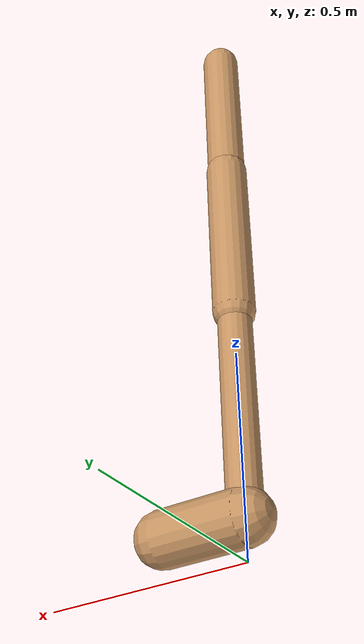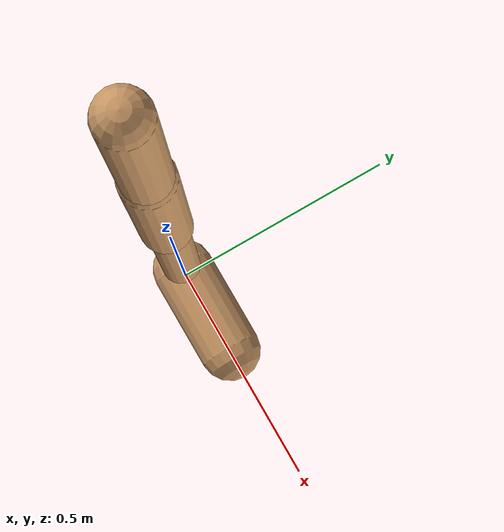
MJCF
<mujoco model="walker2d">
  <compiler angle="degree" coordinate="global" inertiafromgeom="true" />
  <default>
    <joint armature="0.01" damping=".1" limited="true" />
    <geom conaffinity="0" condim="3" contype="1" density="1000" friction="0.8 .1 .1" rgba="0.8 0.6 .4 1" />
  </default>
  <option integrator="RK4" timestep="0.002" />
  <worldbody>

    <body name="torso" pos="0 0 -0.032916789869965844">
      <joint armature="0" axis="1 0 0" damping="0" limited="false" name="ignorex" pos="0 0 0" stiffness="0" type="slide" />
      <joint armature="0" axis="0 0 1" damping="0" limited="false" name="ignorez" pos="0 0 0" ref="1.25" stiffness="0" type="slide" />
      <joint armature="0" axis="0 1 0" damping="0" limited="false" name="ignorey" pos="0 0 0" stiffness="0" type="hinge" />
      <geom fromto="0 0 1.45 0 0 1.05" name="torso_geom" size="0.04695955439862659" type="capsule" />
      <body name="thigh">
        <joint axis="0 -1 0" name="thigh_joint" pos="0 0 1.05" range="-150 0" type="hinge" />
        <geom fromto="0.0 0.0 1.05 0.0 0.0 0.6155921636226154" name="thigh_geom" size="0.051111715712361616" type="capsule" />
        <body name="leg" pos="0.0 0.0 0.015592163622615396">
          <joint axis="0 -1 0" name="leg_joint" pos="0 0 0.6" range="-150 0" type="hinge" />
          <geom fromto="0.0 0.0 0.6 0.0 0.0 0.11732462624735045" name="leg_geom" size="0.040889372569889296" type="capsule" />
          <body name="foot" pos="0.0 0.0 0.01732462624735044">
            <joint axis="0 -1 0" name="foot_joint" pos="0 0 0.1" range="-45 45" type="hinge" />
            <geom fromto="-0.0 0.0 0.1 0.20480970411854296 0.0 0.1" name="foot_geom" size="0.06535332696688645" type="capsule" />
          </body>
        </body>
      </body>

      <body name="thigh_left">
        <joint axis="0 -1 0" name="thigh_left_joint" pos="0 0 1.05" range="-150 0" type="hinge" />
        <geom fromto="0.0 0.0 1.05 0.0 0.0 0.6155921636226154" name="thigh_left_geom" rgba=".7 .3 .6 1" size="0.051111715712361616" type="capsule" />
        <body name="leg_left" pos="0.0 0.0 0.015592163622615396">
          <joint axis="0 -1 0" name="leg_left_joint" pos="0 0 0.6" range="-150 0" type="hinge" />
          <geom fromto="0.0 0.0 0.6 0.0 0.0 0.11732462624735045" name="leg_left_geom" rgba=".7 .3 .6 1" size="0.040889372569889296" type="capsule" />
          <body name="foot_left" pos="0.0 0.0 0.01732462624735044">
            <joint axis="0 -1 0" name="foot_left_joint" pos="0 0 0.1" range="-45 45" type="hinge" />
            <geom fromto="-0.0 0.0 0.1 0.20480970411854296 0.0 0.1" name="foot_left_geom" rgba=".7 .3 .6 1" size="0.06535332696688645" type="capsule" />
          </body>
        </body>
      </body>
    </body>
  </worldbody>
  <actuator>

    <motor ctrllimited="true" ctrlrange="-1.0 1.0" gear="100" joint="thigh_joint" />
    <motor ctrllimited="true" ctrlrange="-1.0 1.0" gear="100" joint="leg_joint" />
    <motor ctrllimited="true" ctrlrange="-1.0 1.0" gear="100" joint="foot_joint" />
    <motor ctrllimited="true" ctrlrange="-1.0 1.0" gear="100" joint="thigh_left_joint" />
    <motor ctrllimited="true" ctrlrange="-1.0 1.0" gear="100" joint="leg_left_joint" />
    <motor ctrllimited="true" ctrlrange="-1.0 1.0" gear="100" joint="foot_left_joint" />

  </actuator>
</mujoco>
